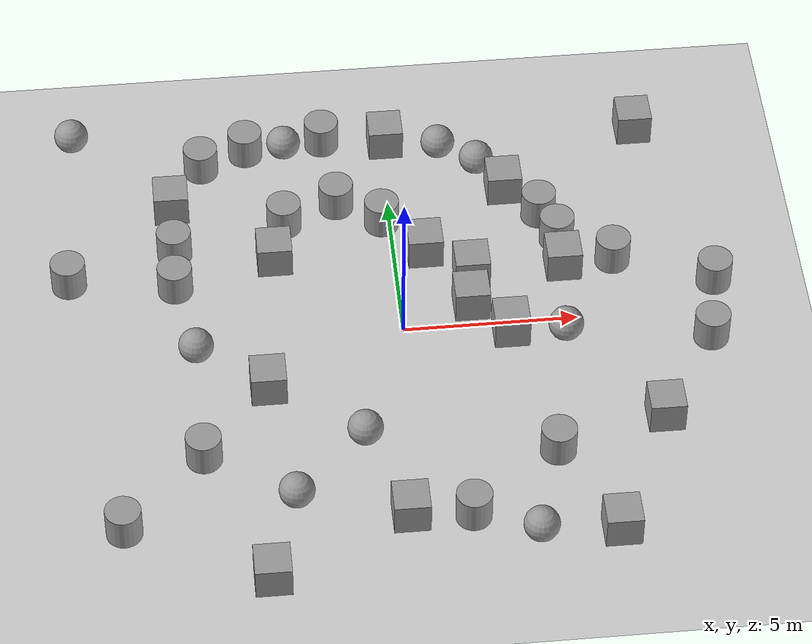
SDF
<sdf version="1.7">
 <world name="default">
  <light name="sun" type="directional">
   <pose>0 0 10 0 -0 0</pose>
   <diffuse>0.8 0.8 0.8 1</diffuse>
   <specular>0.2 0.2 0.2 1</specular>
   <attenuation>
    <range>1000</range>
    <constant>0.9</constant>
    <linear>0.01</linear>
    <quadratic>0.001</quadratic>
   </attenuation>
   <direction>-0.5 0.1 -0.9</direction>
   <spot><inner_angle>0</inner_angle><outer_angle>0</outer_angle><falloff>0</falloff></spot>
  </light>
  <model name="ground_plane">
   <static>1</static>
   <link name="link">
    <collision name="collision">
     <geometry><plane><normal>0 0 1</normal><size>100 100</size></plane></geometry>
     <surface>
      <contact><collide_bitmask>65535</collide_bitmask></contact>
      <friction><ode><mu>100</mu><mu2>50</mu2></ode></friction>
     </surface>
    </collision>
    <visual name="visual">
     <cast_shadows>0</cast_shadows>
     <geometry><plane><normal>0 0 1</normal><size>100 100</size></plane></geometry>
     <material>
      <script><uri>file://media/materials/scripts/gazebo.material</uri><name>Gazebo/Grey</name></script>
     </material>
    </visual>
   </link>
  </model>
  <gravity>0 0 -9.8</gravity>
  <magnetic_field>6e-06 2.3e-05 -4.2e-05</magnetic_field>
  <atmosphere type="adiabatic"/>
  <physics type="ode">
   <max_step_size>0.001</max_step_size>
   <real_time_factor>1</real_time_factor>
   <real_time_update_rate>1000</real_time_update_rate>
  </physics>
  <scene><ambient>0.4 0.4 0.4 1</ambient><background>0.7 0.7 0.7 1</background><shadows>1</shadows></scene>
  <audio><device>default</device></audio>
  <spherical_coordinates>
   <surface_model>EARTH_WGS84</surface_model>
   <latitude_deg>0</latitude_deg>
   <longitude_deg>0</longitude_deg>
   <elevation>0</elevation>
   <heading_deg>0</heading_deg>
  </spherical_coordinates>
  <model name="unit_box">
   <pose>-3.99124 -1.9575 0.499995 0 1e-05 0</pose>
   <link name="link">
    <inertial>
     <mass>1</mass>
     <inertia>
      <ixx>0.166667</ixx>
      <ixy>0</ixy>
      <ixz>0</ixz>
      <iyy>0.166667</iyy>
      <iyz>0</iyz>
      <izz>0.166667</izz>
     </inertia>
    </inertial>
    <collision name="collision"><geometry><box><size>1 1 1</size></box></geometry></collision>
    <visual name="visual">
     <geometry><box><size>1 1 1</size></box></geometry>
     <material>
      <script><name>Gazebo/Grey</name><uri>file://media/materials/scripts/gazebo.material</uri></script>
     </material>
    </visual>
   </link>
  </model>
  <model name="unit_cylinder">
   <pose>-6.38831 2.07544 0.499994 -3e-06 -2e-06 0</pose>
   <link name="link">
    <inertial>
     <mass>1</mass>
     <inertia><ixx>0.145833</ixx><ixy>0</ixy><ixz>0</ixz><iyy>0.145833</iyy><iyz>0</iyz><izz>0.125</izz></inertia>
    </inertial>
    <collision name="collision">
     <geometry><cylinder><radius>0.5</radius><length>1</length></cylinder></geometry>
    </collision>
    <visual name="visual">
     <geometry><cylinder><radius>0.5</radius><length>1</length></cylinder></geometry>
     <material>
      <script><name>Gazebo/Grey</name><uri>file://media/materials/scripts/gazebo.material</uri></script>
     </material>
    </visual>
   </link>
  </model>
  <model name="unit_sphere">
   <pose>-1.44228 -3.93818 0.5 0 -0 0</pose>
   <link name="link">
    <inertial>
     <mass>1</mass>
     <inertia><ixx>0.1</ixx><ixy>0</ixy><ixz>0</ixz><iyy>0.1</iyy><iyz>0</iyz><izz>0.1</izz></inertia>
    </inertial>
    <collision name="collision"><geometry><sphere><radius>0.5</radius></sphere></geometry></collision>
    <visual name="visual">
     <geometry><sphere><radius>0.5</radius></sphere></geometry>
     <material>
      <script><name>Gazebo/Grey</name><uri>file://media/materials/scripts/gazebo.material</uri></script>
     </material>
    </visual>
   </link>
  </model>
  <model name="unit_box_0">
   <pose>-3.48225 2.91261 0.499995 -1e-05 -0 -0</pose>
   <link name="link">
    <inertial>
     <mass>1</mass>
     <inertia>
      <ixx>0.166667</ixx>
      <ixy>0</ixy>
      <ixz>0</ixz>
      <iyy>0.166667</iyy>
      <iyz>0</iyz>
      <izz>0.166667</izz>
     </inertia>
    </inertial>
    <collision name="collision"><geometry><box><size>1 1 1</size></box></geometry></collision>
    <visual name="visual">
     <geometry><box><size>1 1 1</size></box></geometry>
     <material>
      <script><name>Gazebo/Grey</name><uri>file://media/materials/scripts/gazebo.material</uri></script>
     </material>
    </visual>
   </link>
  </model>
  <model name="unit_cylinder_0">
   <pose>-6.3407 3.47794 0.499997 4e-06 2e-06 -0</pose>
   <link name="link">
    <inertial>
     <mass>1</mass>
     <inertia><ixx>0.145833</ixx><ixy>0</ixy><ixz>0</ixz><iyy>0.145833</iyy><iyz>0</iyz><izz>0.125</izz></inertia>
    </inertial>
    <collision name="collision">
     <geometry><cylinder><radius>0.5</radius><length>1</length></cylinder></geometry>
    </collision>
    <visual name="visual">
     <geometry><cylinder><radius>0.5</radius><length>1</length></cylinder></geometry>
     <material>
      <script><name>Gazebo/Grey</name><uri>file://media/materials/scripts/gazebo.material</uri></script>
     </material>
    </visual>
   </link>
  </model>
  <model name="unit_box_1">
   <pose>-6.34811 5.24105 0.499995 1e-05 -0 0</pose>
   <link name="link">
    <inertial>
     <mass>1</mass>
     <inertia>
      <ixx>0.166667</ixx>
      <ixy>0</ixy>
      <ixz>0</ixz>
      <iyy>0.166667</iyy>
      <iyz>0</iyz>
      <izz>0.166667</izz>
     </inertia>
    </inertial>
    <collision name="collision"><geometry><box><size>1 1 1</size></box></geometry></collision>
    <visual name="visual">
     <geometry><box><size>1 1 1</size></box></geometry>
     <material>
      <script><name>Gazebo/Grey</name><uri>file://media/materials/scripts/gazebo.material</uri></script>
     </material>
    </visual>
   </link>
  </model>
  <model name="unit_cylinder_1">
   <pose>-3.09349 4.33618 0.499997 4e-06 3e-06 -0</pose>
   <link name="link">
    <inertial>
     <mass>1</mass>
     <inertia><ixx>0.145833</ixx><ixy>0</ixy><ixz>0</ixz><iyy>0.145833</iyy><iyz>0</iyz><izz>0.125</izz></inertia>
    </inertial>
    <collision name="collision">
     <geometry><cylinder><radius>0.5</radius><length>1</length></cylinder></geometry>
    </collision>
    <visual name="visual">
     <geometry><cylinder><radius>0.5</radius><length>1</length></cylinder></geometry>
     <material>
      <script><name>Gazebo/Grey</name><uri>file://media/materials/scripts/gazebo.material</uri></script>
     </material>
    </visual>
   </link>
  </model>
  <model name="unit_cylinder_2">
   <pose>-5.38449 6.79981 0.499994 -4e-06 -3e-06 -0</pose>
   <link name="link">
    <inertial>
     <mass>1</mass>
     <inertia><ixx>0.145833</ixx><ixy>0</ixy><ixz>0</ixz><iyy>0.145833</iyy><iyz>0</iyz><izz>0.125</izz></inertia>
    </inertial>
    <collision name="collision">
     <geometry><cylinder><radius>0.5</radius><length>1</length></cylinder></geometry>
    </collision>
    <visual name="visual">
     <geometry><cylinder><radius>0.5</radius><length>1</length></cylinder></geometry>
     <material>
      <script><name>Gazebo/Grey</name><uri>file://media/materials/scripts/gazebo.material</uri></script>
     </material>
    </visual>
   </link>
  </model>
  <model name="unit_cylinder_3">
   <pose>-4.03477 7.3574 0.499994 -4e-06 -3e-06 -0</pose>
   <link name="link">
    <inertial>
     <mass>1</mass>
     <inertia><ixx>0.145833</ixx><ixy>0</ixy><ixz>0</ixz><iyy>0.145833</iyy><iyz>0</iyz><izz>0.125</izz></inertia>
    </inertial>
    <collision name="collision">
     <geometry><cylinder><radius>0.5</radius><length>1</length></cylinder></geometry>
    </collision>
    <visual name="visual">
     <geometry><cylinder><radius>0.5</radius><length>1</length></cylinder></geometry>
     <material>
      <script><name>Gazebo/Grey</name><uri>file://media/materials/scripts/gazebo.material</uri></script>
     </material>
    </visual>
   </link>
  </model>
  <model name="unit_sphere_0">
   <pose>-2.89675 7.31436 0.5 0 -0 0</pose>
   <link name="link">
    <inertial>
     <mass>1</mass>
     <inertia><ixx>0.1</ixx><ixy>0</ixy><ixz>0</ixz><iyy>0.1</iyy><iyz>0</iyz><izz>0.1</izz></inertia>
    </inertial>
    <collision name="collision"><geometry><sphere><radius>0.5</radius></sphere></geometry></collision>
    <visual name="visual">
     <geometry><sphere><radius>0.5</radius></sphere></geometry>
     <material>
      <script><name>Gazebo/Grey</name><uri>file://media/materials/scripts/gazebo.material</uri></script>
     </material>
    </visual>
   </link>
  </model>
  <model name="unit_cylinder_4">
   <pose>-1.74273 7.58927 0.499994 -4e-06 -4e-06 -0</pose>
   <link name="link">
    <inertial>
     <mass>1</mass>
     <inertia><ixx>0.145833</ixx><ixy>0</ixy><ixz>0</ixz><iyy>0.145833</iyy><iyz>0</iyz><izz>0.125</izz></inertia>
    </inertial>
    <collision name="collision">
     <geometry><cylinder><radius>0.5</radius><length>1</length></cylinder></geometry>
    </collision>
    <visual name="visual">
     <geometry><cylinder><radius>0.5</radius><length>1</length></cylinder></geometry>
     <material>
      <script><name>Gazebo/Grey</name><uri>file://media/materials/scripts/gazebo.material</uri></script>
     </material>
    </visual>
   </link>
  </model>
  <model name="unit_cylinder_5">
   <pose>-1.51997 4.96739 0.499992 -3e-06 -3e-06 0</pose>
   <link name="link">
    <inertial>
     <mass>1</mass>
     <inertia><ixx>0.145833</ixx><ixy>0</ixy><ixz>0</ixz><iyy>0.145833</iyy><iyz>0</iyz><izz>0.125</izz></inertia>
    </inertial>
    <collision name="collision">
     <geometry><cylinder><radius>0.5</radius><length>1</length></cylinder></geometry>
    </collision>
    <visual name="visual">
     <geometry><cylinder><radius>0.5</radius><length>1</length></cylinder></geometry>
     <material>
      <script><name>Gazebo/Grey</name><uri>file://media/materials/scripts/gazebo.material</uri></script>
     </material>
    </visual>
   </link>
  </model>
  <model name="unit_box_2">
   <pose>0.131171 7.35513 0.499995 -1e-05 -0 -0</pose>
   <link name="link">
    <inertial>
     <mass>1</mass>
     <inertia>
      <ixx>0.166667</ixx>
      <ixy>0</ixy>
      <ixz>0</ixz>
      <iyy>0.166667</iyy>
      <iyz>0</iyz>
      <izz>0.166667</izz>
     </inertia>
    </inertial>
    <collision name="collision"><geometry><box><size>1 1 1</size></box></geometry></collision>
    <visual name="visual">
     <geometry><box><size>1 1 1</size></box></geometry>
     <material>
      <script><name>Gazebo/Grey</name><uri>file://media/materials/scripts/gazebo.material</uri></script>
     </material>
    </visual>
   </link>
  </model>
  <model name="unit_cylinder_6">
   <pose>-0.250403 4.15834 0.499992 -3e-06 -4e-06 -0</pose>
   <link name="link">
    <inertial>
     <mass>1</mass>
     <inertia><ixx>0.145833</ixx><ixy>0</ixy><ixz>0</ixz><iyy>0.145833</iyy><iyz>0</iyz><izz>0.125</izz></inertia>
    </inertial>
    <collision name="collision">
     <geometry><cylinder><radius>0.5</radius><length>1</length></cylinder></geometry>
    </collision>
    <visual name="visual">
     <geometry><cylinder><radius>0.5</radius><length>1</length></cylinder></geometry>
     <material>
      <script><name>Gazebo/Grey</name><uri>file://media/materials/scripts/gazebo.material</uri></script>
     </material>
    </visual>
   </link>
  </model>
  <model name="unit_box_3">
   <pose>0.877681 2.84691 0.499995 -1e-05 -0 -0</pose>
   <link name="link">
    <inertial>
     <mass>1</mass>
     <inertia>
      <ixx>0.166667</ixx>
      <ixy>0</ixy>
      <ixz>0</ixz>
      <iyy>0.166667</iyy>
      <iyz>0</iyz>
      <izz>0.166667</izz>
     </inertia>
    </inertial>
    <collision name="collision"><geometry><box><size>1 1 1</size></box></geometry></collision>
    <visual name="visual">
     <geometry><box><size>1 1 1</size></box></geometry>
     <material>
      <script><name>Gazebo/Grey</name><uri>file://media/materials/scripts/gazebo.material</uri></script>
     </material>
    </visual>
   </link>
  </model>
  <model name="unit_sphere_1">
   <pose>1.6775 6.94136 0.5 0 -0 0</pose>
   <link name="link">
    <inertial>
     <mass>1</mass>
     <inertia><ixx>0.1</ixx><ixy>0</ixy><ixz>0</ixz><iyy>0.1</iyy><iyz>0</iyz><izz>0.1</izz></inertia>
    </inertial>
    <collision name="collision"><geometry><sphere><radius>0.5</radius></sphere></geometry></collision>
    <visual name="visual">
     <geometry><sphere><radius>0.5</radius></sphere></geometry>
     <material>
      <script><name>Gazebo/Grey</name><uri>file://media/materials/scripts/gazebo.material</uri></script>
     </material>
    </visual>
   </link>
  </model>
  <model name="unit_sphere_2">
   <pose>2.7419 6.17907 0.5 0 -0 0</pose>
   <link name="link">
    <inertial>
     <mass>1</mass>
     <inertia><ixx>0.1</ixx><ixy>0</ixy><ixz>0</ixz><iyy>0.1</iyy><iyz>0</iyz><izz>0.1</izz></inertia>
    </inertial>
    <collision name="collision"><geometry><sphere><radius>0.5</radius></sphere></geometry></collision>
    <visual name="visual">
     <geometry><sphere><radius>0.5</radius></sphere></geometry>
     <material>
      <script><name>Gazebo/Grey</name><uri>file://media/materials/scripts/gazebo.material</uri></script>
     </material>
    </visual>
   </link>
  </model>
  <model name="unit_box_4">
   <pose>3.43132 5.1567 0.499995 0 1e-05 0</pose>
   <link name="link">
    <inertial>
     <mass>1</mass>
     <inertia>
      <ixx>0.166667</ixx>
      <ixy>0</ixy>
      <ixz>0</ixz>
      <iyy>0.166667</iyy>
      <iyz>0</iyz>
      <izz>0.166667</izz>
     </inertia>
    </inertial>
    <collision name="collision"><geometry><box><size>1 1 1</size></box></geometry></collision>
    <visual name="visual">
     <geometry><box><size>1 1 1</size></box></geometry>
     <material>
      <script><name>Gazebo/Grey</name><uri>file://media/materials/scripts/gazebo.material</uri></script>
     </material>
    </visual>
   </link>
  </model>
  <model name="unit_box_5">
   <pose>2.13692 1.87519 0.499995 -1e-05 -0 -0</pose>
   <link name="link">
    <inertial>
     <mass>1</mass>
     <inertia>
      <ixx>0.166667</ixx>
      <ixy>0</ixy>
      <ixz>0</ixz>
      <iyy>0.166667</iyy>
      <iyz>0</iyz>
      <izz>0.166667</izz>
     </inertia>
    </inertial>
    <collision name="collision"><geometry><box><size>1 1 1</size></box></geometry></collision>
    <visual name="visual">
     <geometry><box><size>1 1 1</size></box></geometry>
     <material>
      <script><name>Gazebo/Grey</name><uri>file://media/materials/scripts/gazebo.material</uri></script>
     </material>
    </visual>
   </link>
  </model>
  <model name="unit_cylinder_7">
   <pose>4.34466 4.08924 0.499998 3e-06 -2e-06 0</pose>
   <link name="link">
    <inertial>
     <mass>1</mass>
     <inertia><ixx>0.145833</ixx><ixy>0</ixy><ixz>0</ixz><iyy>0.145833</iyy><iyz>0</iyz><izz>0.125</izz></inertia>
    </inertial>
    <collision name="collision">
     <geometry><cylinder><radius>0.5</radius><length>1</length></cylinder></geometry>
    </collision>
    <visual name="visual">
     <geometry><cylinder><radius>0.5</radius><length>1</length></cylinder></geometry>
     <material>
      <script><name>Gazebo/Grey</name><uri>file://media/materials/scripts/gazebo.material</uri></script>
     </material>
    </visual>
   </link>
  </model>
  <model name="unit_box_6">
   <pose>2.00174 0.677674 0.499995 -1e-05 -0 -0</pose>
   <link name="link">
    <inertial>
     <mass>1</mass>
     <inertia>
      <ixx>0.166667</ixx>
      <ixy>0</ixy>
      <ixz>0</ixz>
      <iyy>0.166667</iyy>
      <iyz>0</iyz>
      <izz>0.166667</izz>
     </inertia>
    </inertial>
    <collision name="collision"><geometry><box><size>1 1 1</size></box></geometry></collision>
    <visual name="visual">
     <geometry><box><size>1 1 1</size></box></geometry>
     <material>
      <script><name>Gazebo/Grey</name><uri>file://media/materials/scripts/gazebo.material</uri></script>
     </material>
    </visual>
   </link>
  </model>
  <model name="unit_cylinder_8">
   <pose>4.75676 3.07451 0.499998 3e-06 -2e-06 0</pose>
   <link name="link">
    <inertial>
     <mass>1</mass>
     <inertia><ixx>0.145833</ixx><ixy>0</ixy><ixz>0</ixz><iyy>0.145833</iyy><iyz>0</iyz><izz>0.125</izz></inertia>
    </inertial>
    <collision name="collision">
     <geometry><cylinder><radius>0.5</radius><length>1</length></cylinder></geometry>
    </collision>
    <visual name="visual">
     <geometry><cylinder><radius>0.5</radius><length>1</length></cylinder></geometry>
     <material>
      <script><name>Gazebo/Grey</name><uri>file://media/materials/scripts/gazebo.material</uri></script>
     </material>
    </visual>
   </link>
  </model>
  <model name="unit_box_7">
   <pose>4.79484 1.96212 0.499995 -1e-05 -0 -0</pose>
   <link name="link">
    <inertial>
     <mass>1</mass>
     <inertia>
      <ixx>0.166667</ixx>
      <ixy>0</ixy>
      <ixz>0</ixz>
      <iyy>0.166667</iyy>
      <iyz>0</iyz>
      <izz>0.166667</izz>
     </inertia>
    </inertial>
    <collision name="collision"><geometry><box><size>1 1 1</size></box></geometry></collision>
    <visual name="visual">
     <geometry><box><size>1 1 1</size></box></geometry>
     <material>
      <script><name>Gazebo/Grey</name><uri>file://media/materials/scripts/gazebo.material</uri></script>
     </material>
    </visual>
   </link>
  </model>
  <model name="unit_box_8">
   <pose>3.01119 -0.438335 0.499995 0 1e-05 0</pose>
   <link name="link">
    <inertial>
     <mass>1</mass>
     <inertia>
      <ixx>0.166667</ixx>
      <ixy>0</ixy>
      <ixz>0</ixz>
      <iyy>0.166667</iyy>
      <iyz>0</iyz>
      <izz>0.166667</izz>
     </inertia>
    </inertial>
    <collision name="collision"><geometry><box><size>1 1 1</size></box></geometry></collision>
    <visual name="visual">
     <geometry><box><size>1 1 1</size></box></geometry>
     <material>
      <script><name>Gazebo/Grey</name><uri>file://media/materials/scripts/gazebo.material</uri></script>
     </material>
    </visual>
   </link>
  </model>
  <model name="unit_sphere_3">
   <pose>4.56368 -0.636015 0.5 0 -0 0</pose>
   <link name="link">
    <inertial>
     <mass>1</mass>
     <inertia><ixx>0.1</ixx><ixy>0</ixy><ixz>0</ixz><iyy>0.1</iyy><iyz>0</iyz><izz>0.1</izz></inertia>
    </inertial>
    <collision name="collision"><geometry><sphere><radius>0.5</radius></sphere></geometry></collision>
    <visual name="visual">
     <geometry><sphere><radius>0.5</radius></sphere></geometry>
     <material>
      <script><name>Gazebo/Grey</name><uri>file://media/materials/scripts/gazebo.material</uri></script>
     </material>
    </visual>
   </link>
  </model>
  <model name="unit_cylinder_9">
   <pose>6.26282 2.08417 0.499998 3e-06 -2e-06 0</pose>
   <link name="link">
    <inertial>
     <mass>1</mass>
     <inertia><ixx>0.145833</ixx><ixy>0</ixy><ixz>0</ixz><iyy>0.145833</iyy><iyz>0</iyz><izz>0.125</izz></inertia>
    </inertial>
    <collision name="collision">
     <geometry><cylinder><radius>0.5</radius><length>1</length></cylinder></geometry>
    </collision>
    <visual name="visual">
     <geometry><cylinder><radius>0.5</radius><length>1</length></cylinder></geometry>
     <material>
      <script><name>Gazebo/Grey</name><uri>file://media/materials/scripts/gazebo.material</uri></script>
     </material>
    </visual>
   </link>
  </model>
  <model name="unit_box_9">
   <pose>-0.463998 -6.8159 0.499995 -1e-05 -0 -0</pose>
   <link name="link">
    <inertial>
     <mass>1</mass>
     <inertia>
      <ixx>0.166667</ixx>
      <ixy>0</ixy>
      <ixz>0</ixz>
      <iyy>0.166667</iyy>
      <iyz>0</iyz>
      <izz>0.166667</izz>
     </inertia>
    </inertial>
    <collision name="collision"><geometry><box><size>1 1 1</size></box></geometry></collision>
    <visual name="visual">
     <geometry><box><size>1 1 1</size></box></geometry>
     <material>
      <script><name>Gazebo/Grey</name><uri>file://media/materials/scripts/gazebo.material</uri></script>
     </material>
    </visual>
   </link>
  </model>
  <model name="unit_cylinder_10">
   <pose>-5.92236 -4.27759 0.499998 3e-06 -3e-06 0</pose>
   <link name="link">
    <inertial>
     <mass>1</mass>
     <inertia><ixx>0.145833</ixx><ixy>0</ixy><ixz>0</ixz><iyy>0.145833</iyy><iyz>0</iyz><izz>0.125</izz></inertia>
    </inertial>
    <collision name="collision">
     <geometry><cylinder><radius>0.5</radius><length>1</length></cylinder></geometry>
    </collision>
    <visual name="visual">
     <geometry><cylinder><radius>0.5</radius><length>1</length></cylinder></geometry>
     <material>
      <script><name>Gazebo/Grey</name><uri>file://media/materials/scripts/gazebo.material</uri></script>
     </material>
    </visual>
   </link>
  </model>
  <model name="unit_sphere_4">
   <pose>-3.4901 -5.97382 0.5 0 -0 0</pose>
   <link name="link">
    <inertial>
     <mass>1</mass>
     <inertia><ixx>0.1</ixx><ixy>0</ixy><ixz>0</ixz><iyy>0.1</iyy><iyz>0</iyz><izz>0.1</izz></inertia>
    </inertial>
    <collision name="collision"><geometry><sphere><radius>0.5</radius></sphere></geometry></collision>
    <visual name="visual">
     <geometry><sphere><radius>0.5</radius></sphere></geometry>
     <material>
      <script><name>Gazebo/Grey</name><uri>file://media/materials/scripts/gazebo.material</uri></script>
     </material>
    </visual>
   </link>
  </model>
  <model name="unit_cylinder_11">
   <pose>3.80615 -4.88617 0.499992 -3e-06 3e-06 0</pose>
   <link name="link">
    <inertial>
     <mass>1</mass>
     <inertia><ixx>0.145833</ixx><ixy>0</ixy><ixz>0</ixz><iyy>0.145833</iyy><iyz>0</iyz><izz>0.125</izz></inertia>
    </inertial>
    <collision name="collision">
     <geometry><cylinder><radius>0.5</radius><length>1</length></cylinder></geometry>
    </collision>
    <visual name="visual">
     <geometry><cylinder><radius>0.5</radius><length>1</length></cylinder></geometry>
     <material>
      <script><name>Gazebo/Grey</name><uri>file://media/materials/scripts/gazebo.material</uri></script>
     </material>
    </visual>
   </link>
  </model>
  <model name="unit_cylinder_12">
   <pose>1.23572 -6.93962 0.499998 3e-06 -3e-06 0</pose>
   <link name="link">
    <inertial>
     <mass>1</mass>
     <inertia><ixx>0.145833</ixx><ixy>0</ixy><ixz>0</ixz><iyy>0.145833</iyy><iyz>0</iyz><izz>0.125</izz></inertia>
    </inertial>
    <collision name="collision">
     <geometry><cylinder><radius>0.5</radius><length>1</length></cylinder></geometry>
    </collision>
    <visual name="visual">
     <geometry><cylinder><radius>0.5</radius><length>1</length></cylinder></geometry>
     <material>
      <script><name>Gazebo/Grey</name><uri>file://media/materials/scripts/gazebo.material</uri></script>
     </material>
    </visual>
   </link>
  </model>
  <model name="unit_box_10">
   <pose>6.91542 -3.93735 0.499995 0 1e-05 0</pose>
   <link name="link">
    <inertial>
     <mass>1</mass>
     <inertia>
      <ixx>0.166667</ixx>
      <ixy>0</ixy>
      <ixz>0</ixz>
      <iyy>0.166667</iyy>
      <iyz>0</iyz>
      <izz>0.166667</izz>
     </inertia>
    </inertial>
    <collision name="collision"><geometry><box><size>1 1 1</size></box></geometry></collision>
    <visual name="visual">
     <geometry><box><size>1 1 1</size></box></geometry>
     <material>
      <script><name>Gazebo/Grey</name><uri>file://media/materials/scripts/gazebo.material</uri></script>
     </material>
    </visual>
   </link>
  </model>
  <model name="unit_sphere_5">
   <pose>-5.92433 -0.491744 0.5 0 -0 0</pose>
   <link name="link">
    <inertial>
     <mass>1</mass>
     <inertia><ixx>0.1</ixx><ixy>0</ixy><ixz>0</ixz><iyy>0.1</iyy><iyz>0</iyz><izz>0.1</izz></inertia>
    </inertial>
    <collision name="collision"><geometry><sphere><radius>0.5</radius></sphere></geometry></collision>
    <visual name="visual">
     <geometry><sphere><radius>0.5</radius></sphere></geometry>
     <material>
      <script><name>Gazebo/Grey</name><uri>file://media/materials/scripts/gazebo.material</uri></script>
     </material>
    </visual>
   </link>
  </model>
  <model name="unit_cylinder_13">
   <pose>9.05439 0.994154 0.499992 -3e-06 3e-06 0</pose>
   <link name="link">
    <inertial>
     <mass>1</mass>
     <inertia><ixx>0.145833</ixx><ixy>0</ixy><ixz>0</ixz><iyy>0.145833</iyy><iyz>0</iyz><izz>0.125</izz></inertia>
    </inertial>
    <collision name="collision">
     <geometry><cylinder><radius>0.5</radius><length>1</length></cylinder></geometry>
    </collision>
    <visual name="visual">
     <geometry><cylinder><radius>0.5</radius><length>1</length></cylinder></geometry>
     <material>
      <script><name>Gazebo/Grey</name><uri>file://media/materials/scripts/gazebo.material</uri></script>
     </material>
    </visual>
   </link>
  </model>
  <model name="unit_cylinder_14">
   <pose>8.66291 -1.10388 0.499998 3e-06 -4e-06 0</pose>
   <link name="link">
    <inertial>
     <mass>1</mass>
     <inertia><ixx>0.145833</ixx><ixy>0</ixy><ixz>0</ixz><iyy>0.145833</iyy><iyz>0</iyz><izz>0.125</izz></inertia>
    </inertial>
    <collision name="collision">
     <geometry><cylinder><radius>0.5</radius><length>1</length></cylinder></geometry>
    </collision>
    <visual name="visual">
     <geometry><cylinder><radius>0.5</radius><length>1</length></cylinder></geometry>
     <material>
      <script><name>Gazebo/Grey</name><uri>file://media/materials/scripts/gazebo.material</uri></script>
     </material>
    </visual>
   </link>
  </model>
  <model name="unit_box_11">
   <pose>5.16047 -7.803 0.499995 0 1e-05 0</pose>
   <link name="link">
    <inertial>
     <mass>1</mass>
     <inertia>
      <ixx>0.166667</ixx>
      <ixy>0</ixy>
      <ixz>0</ixz>
      <iyy>0.166667</iyy>
      <iyz>0</iyz>
      <izz>0.166667</izz>
     </inertia>
    </inertial>
    <collision name="collision"><geometry><box><size>1 1 1</size></box></geometry></collision>
    <visual name="visual">
     <geometry><box><size>1 1 1</size></box></geometry>
     <material>
      <script><name>Gazebo/Grey</name><uri>file://media/materials/scripts/gazebo.material</uri></script>
     </material>
    </visual>
   </link>
  </model>
  <model name="unit_box_12">
   <pose>7.57087 7.30018 0.499995 -1e-05 -0 -0</pose>
   <link name="link">
    <inertial>
     <mass>1</mass>
     <inertia>
      <ixx>0.166667</ixx>
      <ixy>0</ixy>
      <ixz>0</ixz>
      <iyy>0.166667</iyy>
      <iyz>0</iyz>
      <izz>0.166667</izz>
     </inertia>
    </inertial>
    <collision name="collision"><geometry><box><size>1 1 1</size></box></geometry></collision>
    <visual name="visual">
     <geometry><box><size>1 1 1</size></box></geometry>
     <material>
      <script><name>Gazebo/Grey</name><uri>file://media/materials/scripts/gazebo.material</uri></script>
     </material>
    </visual>
   </link>
  </model>
  <model name="unit_sphere_6">
   <pose>2.98056 -7.74894 0.5 0 -0 0</pose>
   <link name="link">
    <inertial>
     <mass>1</mass>
     <inertia><ixx>0.1</ixx><ixy>0</ixy><ixz>0</ixz><iyy>0.1</iyy><iyz>0</iyz><izz>0.1</izz></inertia>
    </inertial>
    <collision name="collision"><geometry><sphere><radius>0.5</radius></sphere></geometry></collision>
    <visual name="visual">
     <geometry><sphere><radius>0.5</radius></sphere></geometry>
     <material>
      <script><name>Gazebo/Grey</name><uri>file://media/materials/scripts/gazebo.material</uri></script>
     </material>
    </visual>
   </link>
  </model>
  <model name="unit_cylinder_15">
   <pose>-8.21791 -6.65579 0.499993 -3e-06 -3e-06 0</pose>
   <link name="link">
    <inertial>
     <mass>1</mass>
     <inertia><ixx>0.145833</ixx><ixy>0</ixy><ixz>0</ixz><iyy>0.145833</iyy><iyz>0</iyz><izz>0.125</izz></inertia>
    </inertial>
    <collision name="collision">
     <geometry><cylinder><radius>0.5</radius><length>1</length></cylinder></geometry>
    </collision>
    <visual name="visual">
     <geometry><cylinder><radius>0.5</radius><length>1</length></cylinder></geometry>
     <material>
      <script><name>Gazebo/Grey</name><uri>file://media/materials/scripts/gazebo.material</uri></script>
     </material>
    </visual>
   </link>
  </model>
  <model name="unit_box_13">
   <pose>-4.3366 -8.63387 0.499995 0 1e-05 0</pose>
   <link name="link">
    <inertial>
     <mass>1</mass>
     <inertia>
      <ixx>0.166667</ixx>
      <ixy>0</ixy>
      <ixz>0</ixz>
      <iyy>0.166667</iyy>
      <iyz>0</iyz>
      <izz>0.166667</izz>
     </inertia>
    </inertial>
    <collision name="collision"><geometry><box><size>1 1 1</size></box></geometry></collision>
    <visual name="visual">
     <geometry><box><size>1 1 1</size></box></geometry>
     <material>
      <script><name>Gazebo/Grey</name><uri>file://media/materials/scripts/gazebo.material</uri></script>
     </material>
    </visual>
   </link>
  </model>
  <model name="unit_cylinder_16">
   <pose>-9.42206 2.53689 0.499993 -3e-06 -4e-06 -0</pose>
   <link name="link">
    <inertial>
     <mass>1</mass>
     <inertia><ixx>0.145833</ixx><ixy>0</ixy><ixz>0</ixz><iyy>0.145833</iyy><iyz>0</iyz><izz>0.125</izz></inertia>
    </inertial>
    <collision name="collision">
     <geometry><cylinder><radius>0.5</radius><length>1</length></cylinder></geometry>
    </collision>
    <visual name="visual">
     <geometry><cylinder><radius>0.5</radius><length>1</length></cylinder></geometry>
     <material>
      <script><name>Gazebo/Grey</name><uri>file://media/materials/scripts/gazebo.material</uri></script>
     </material>
    </visual>
   </link>
  </model>
  <model name="unit_sphere_7">
   <pose>-9.1658 8.16746 0.5 0 -0 0</pose>
   <link name="link">
    <inertial>
     <mass>1</mass>
     <inertia><ixx>0.1</ixx><ixy>0</ixy><ixz>0</ixz><iyy>0.1</iyy><iyz>0</iyz><izz>0.1</izz></inertia>
    </inertial>
    <collision name="collision"><geometry><sphere><radius>0.5</radius></sphere></geometry></collision>
    <visual name="visual">
     <geometry><sphere><radius>0.5</radius></sphere></geometry>
     <material>
      <script><name>Gazebo/Grey</name><uri>file://media/materials/scripts/gazebo.material</uri></script>
     </material>
    </visual>
   </link>
  </model>
 </world>
</sdf>
